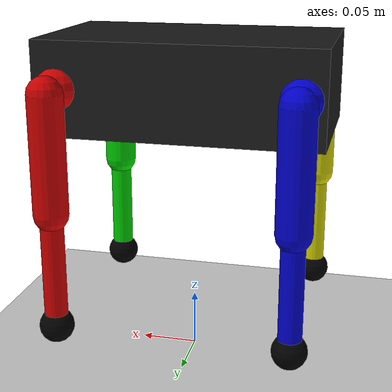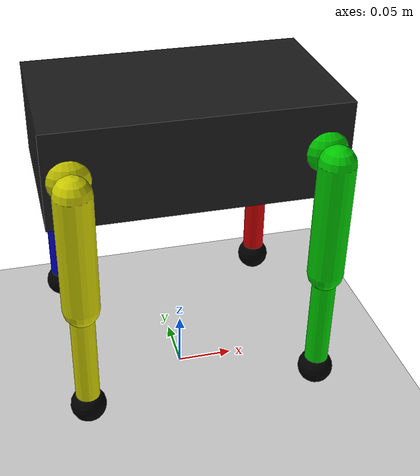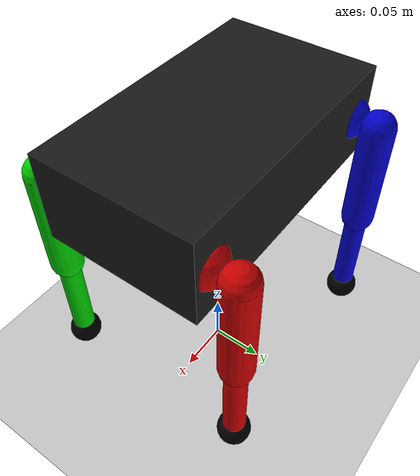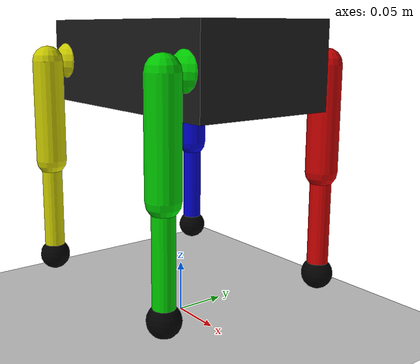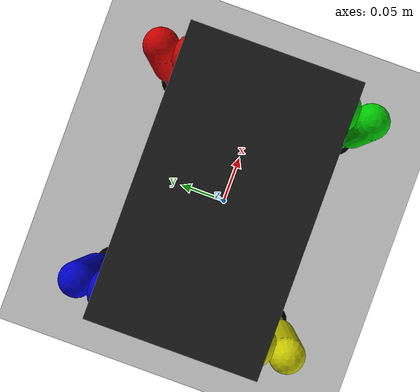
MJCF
<mujoco model="quad_bot">
    <compiler angle="degree" coordinate="local" inertiafromgeom="true"/>
    <option gravity="0 0 -9.81" timestep="0.002"/>

    <default>
        <joint damping="0.5" armature="0.01" frictionloss="0.1"/>
        <geom friction="1.0 0.005 0.0001" solimp="0.9 0.95 0.001" solref="0.02 1" rgba="0.8 0.8 0.8 1"/>
    </default>

    <worldbody>
        <light diffuse=".5 .5 .5" pos="0 0 3" dir="0 0 -1"/>
        <geom name="floor" type="plane" size="10 10 .1" rgba="0.8 0.8 0.8 1"/>

        <!-- CUERPO CENTRAL (trunk) -->
        <body name="trunk" pos="0 0 0.25">
            <freejoint name="root"/>
            <inertial pos="0 0 0" mass="1.9" diaginertia="0.004 0.008 0.010"/>
            <geom name="trunk_collision" type="box" size="0.12 0.07 0.04" rgba="0.1 0.1 0.1 1"/>

            <site name="imu_site" pos="0 0 0" size="0.01" type="sphere" rgba="1 1 1 1"/>

            <!-- SITES de referencia para el algoritmo del ANYmal C -->
            <site name="FL" pos="0.1 0.06 0" size="0.01" rgba="1 0 0 0"/>
            <site name="FR" pos="0.1 -0.06 0" size="0.01" rgba="0 1 0 0"/>
            <site name="RL" pos="-0.1 0.06 0" size="0.01" rgba="0 0 1 0"/>
            <site name="RR" pos="-0.1 -0.06 0" size="0.01" rgba="1 1 0 0"/>

            <!-- PATA DELANTERA IZQUIERDA (FL) -->
            <body name="FL_hip" pos="0.1 0.06 0">
                <joint name="FL_hip_roll" axis="1 0 0" range="-30 30"/>
                <geom name="FL_hip_collision" type="sphere" size="0.02" rgba="0.8 0 0 1"/>
                <body name="FL_thigh" pos="0 0.03 0">
                    <joint name="FL_hip_pitch" axis="0 1 0" range="-60 60"/>
                    <geom name="FL_thigh_collision" type="capsule" size="0.015" fromto="0 0 0 0 0 -0.1" rgba="0.8 0 0 1"/>
                    <body name="FL_calf" pos="0 0 -0.1">
                        <joint name="FL_knee" axis="0 1 0" range="-100 0"/>
                        <geom name="FL_calf_collision" type="capsule" size="0.01" fromto="0 0 0 0 0 -0.1" rgba="0.8 0 0 1"/>
                        <body name="FL_foot" pos="0 0 -0.1">
                            <geom name="FL_foot_collision" type="sphere" size="0.015" rgba="0 0 0 1"/>
                        </body>
                    </body>
                </body>
            </body>

            <!-- PATA DELANTERA DERECHA (FR) -->
            <body name="FR_hip" pos="0.1 -0.06 0">
                <joint name="FR_hip_roll" axis="-1 0 0" range="-30 30"/>
                <geom name="FR_hip_collision" type="sphere" size="0.02" rgba="0 0.8 0 1"/>
                <body name="FR_thigh" pos="0 -0.03 0">
                    <joint name="FR_hip_pitch" axis="0 1 0" range="-60 60"/>
                    <geom name="FR_thigh_collision" type="capsule" size="0.015" fromto="0 0 0 0 0 -0.1" rgba="0 0.8 0 1"/>
                    <body name="FR_calf" pos="0 0 -0.1">
                        <joint name="FR_knee" axis="0 1 0" range="-100 0"/>
                        <geom name="FR_calf_collision" type="capsule" size="0.01" fromto="0 0 0 0 0 -0.1" rgba="0 0.8 0 1"/>
                        <body name="FR_foot" pos="0 0 -0.1">
                            <geom name="FR_foot_collision" type="sphere" size="0.015" rgba="0 0 0 1"/>
                        </body>
                    </body>
                </body>
            </body>

            <!-- PATA TRASERA IZQUIERDA (RL) -->
            <body name="RL_hip" pos="-0.1 0.06 0">
                <joint name="RL_hip_roll" axis="1 0 0" range="-30 30"/>
                <geom name="RL_hip_collision" type="sphere" size="0.02" rgba="0 0 0.8 1"/>
                <body name="RL_thigh" pos="0 0.03 0">
                    <joint name="RL_hip_pitch" axis="0 1 0" range="-60 60"/>
                    <geom name="RL_thigh_collision" type="capsule" size="0.015" fromto="0 0 0 0 0 -0.1" rgba="0 0 0.8 1"/>
                    <body name="RL_calf" pos="0 0 -0.1">
                        <joint name="RL_knee" axis="0 1 0" range="-100 0"/>
                        <geom name="RL_calf_collision" type="capsule" size="0.01" fromto="0 0 0 0 0 -0.1" rgba="0 0 0.8 1"/>
                        <body name="RL_foot" pos="0 0 -0.1">
                            <geom name="RL_foot_collision" type="sphere" size="0.015" rgba="0 0 0 1"/>
                        </body>
                    </body>
                </body>
            </body>

            <!-- PATA TRASERA DERECHA (RR) -->
            <body name="RR_hip" pos="-0.1 -0.06 0">
                <joint name="RR_hip_roll" axis="-1 0 0" range="-30 30"/>
                <geom name="RR_hip_collision" type="sphere" size="0.02" rgba="0.8 0.8 0 1"/>
                <body name="RR_thigh" pos="0 -0.03 0">
                    <joint name="RR_hip_pitch" axis="0 1 0" range="-60 60"/>
                    <geom name="RR_thigh_collision" type="capsule" size="0.015" fromto="0 0 0 0 0 -0.1" rgba="0.8 0.8 0 1"/>
                    <body name="RR_calf" pos="0 0 -0.1">
                        <joint name="RR_knee" axis="0 1 0" range="-100 0"/>
                        <geom name="RR_calf_collision" type="capsule" size="0.01" fromto="0 0 0 0 0 -0.1" rgba="0.8 0.8 0 1"/>
                        <body name="RR_foot" pos="0 0 -0.1">
                            <geom name="RR_foot_collision" type="sphere" size="0.015" rgba="0 0 0 1"/>
                        </body>
                    </body>
                </body>
             </body>
        </body>
    </worldbody>

    <sensor>
        <accelerometer name="imu_accel" site="imu_site"/>
        <gyro name="imu_ang_vel" site="imu_site"/>
        <velocimeter name="imu_lin_vel" site="imu_site"/>
    </sensor>
</mujoco>
